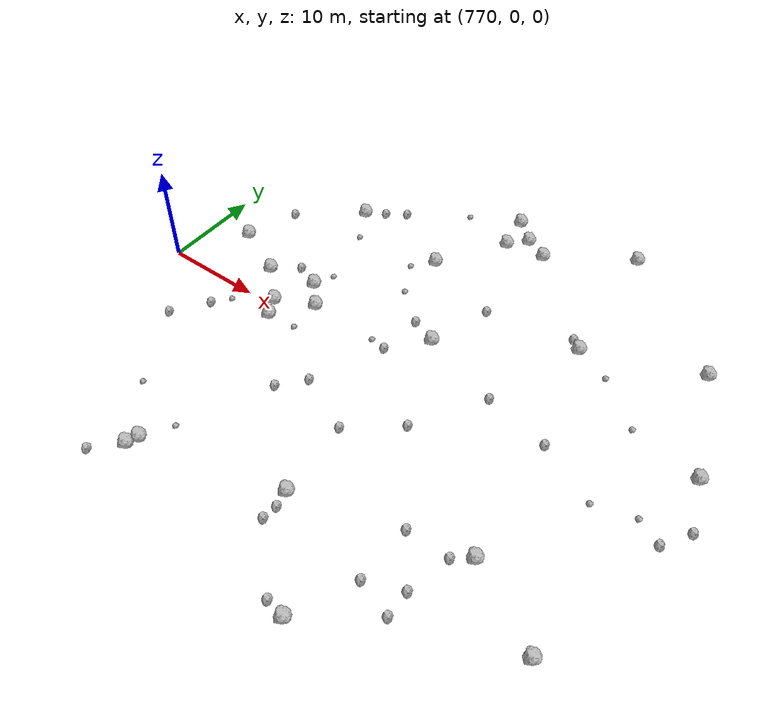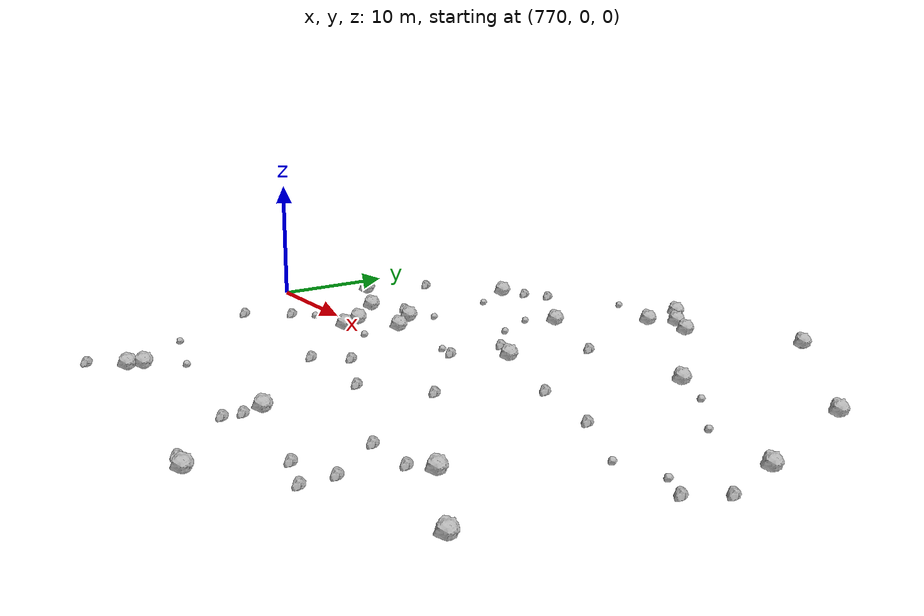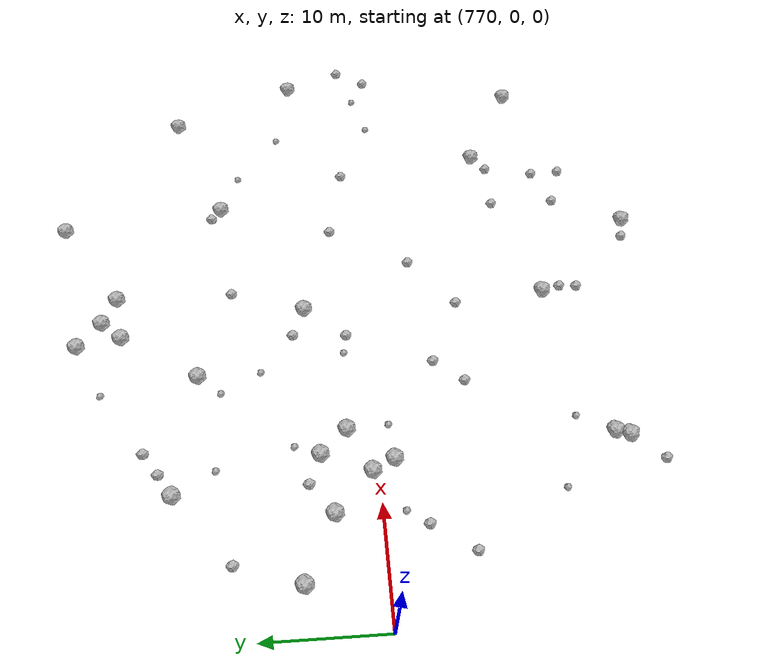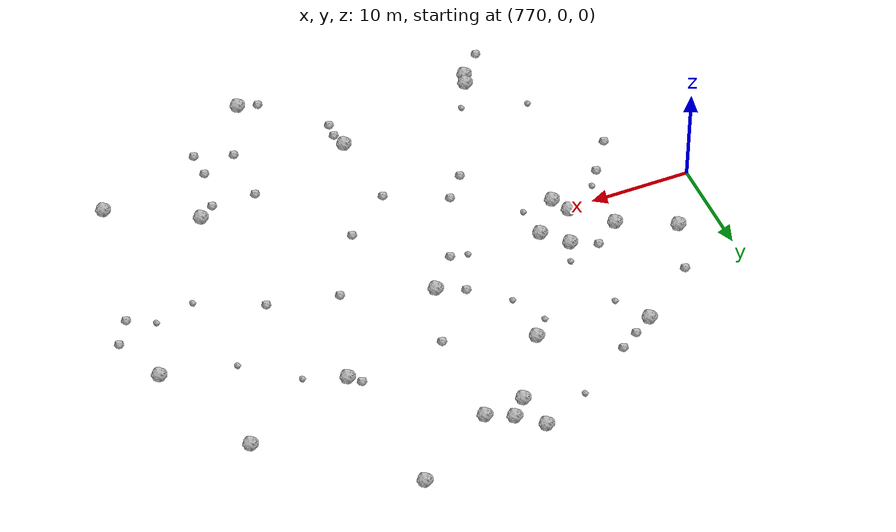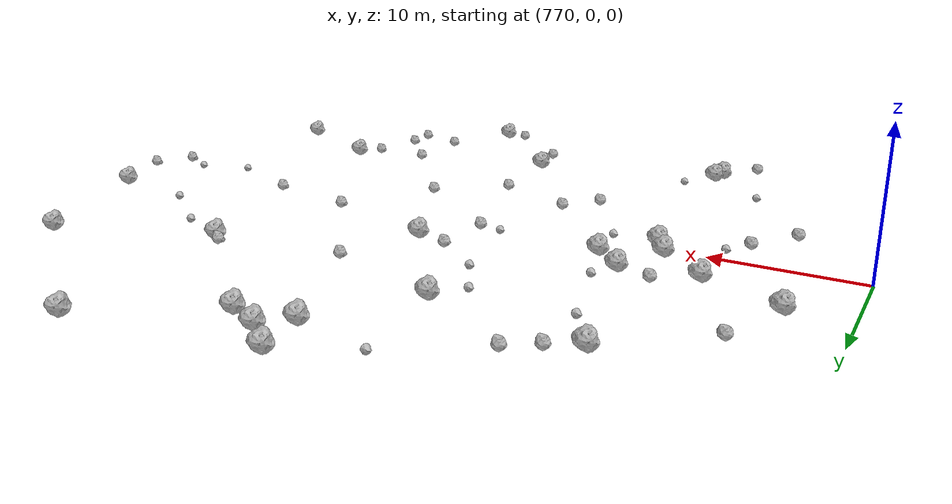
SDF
<sdf version="1.6">
 <world name="default">
  <include><uri>model://sun</uri></include>
  <model name="rock1_20_4">
   <include><uri>model://rock1</uri><pose>798.4183178821324 5.377105565684673 0.5 0 0 0</pose></include>
  </model>
  <model name="rock1_20_5">
   <include><uri>model://rock1</uri><pose>798.9948882882742 -15.983515003247605 0.5 0 0 0</pose></include>
  </model>
  <model name="rock1_20_6">
   <include><uri>model://rock1</uri><pose>821.4193278555214 17.012187681708795 0.5 0 0 0</pose></include>
  </model>
  <model name="rock1_20_7">
   <include><uri>model://rock1</uri><pose>792.1944137547434 14.593755433222555 0.5 0 0 0</pose></include>
  </model>
  <model name="rock1_20_8">
   <include><uri>model://rock1</uri><pose>784.3868200013974 4.650207628766054 0.5 0 0 0</pose></include>
  </model>
  <model name="rock1_20_9">
   <include><uri>model://rock1</uri><pose>815.2608183840109 -11.86935820526331 0.5 0 0 0</pose></include>
  </model>
  <model name="rock1_20_10">
   <include><uri>model://rock1</uri><pose>823.439637082299 -16.362569810026947 0.5 0 0 0</pose></include>
  </model>
  <model name="rock1_20_11">
   <include><uri>model://rock1</uri><pose>783.6471349045264 -1.251412240809696 0.5 0 0 0</pose></include>
  </model>
  <model name="rock1_20_12">
   <include><uri>model://rock1</uri><pose>800.5400550554648 21.88036370600927 0.5 0 0 0</pose></include>
  </model>
  <model name="rock1_20_13">
   <include><uri>model://rock1</uri><pose>796.4802184673227 21.298453936161344 0.5 0 0 0</pose></include>
  </model>
  <model name="rock1_20_14">
   <include><uri>model://rock1</uri><pose>782.7129830431777 0.5711792686135766 0.5 0 0 0</pose></include>
  </model>
  <model name="rock1_20_15">
   <include><uri>model://rock1</uri><pose>773.9574563066145 6.371602313677855 0.5 0 0 0</pose></include>
  </model>
  <model name="rock1_20_16">
   <include><uri>model://rock1</uri><pose>779.3519494166658 3.783440977759575 0.5 0 0 0</pose></include>
  </model>
  <model name="rock1_20_17">
   <include><uri>model://rock1</uri><pose>784.4742864801066 -20.545910510411396 0.5 0 0 0</pose></include>
  </model>
  <model name="rock1_20_18">
   <include><uri>model://rock1</uri><pose>798.0929437130162 23.058466534432725 0.5 0 0 0</pose></include>
  </model>
  <model name="rock1_20_19">
   <include><uri>model://rock1</uri><pose>826.0240636978396 5.825455863024729 0.5 0 0 0</pose></include>
  </model>
  <model name="rock1_20_20">
   <include><uri>model://rock1</uri><pose>781.6090065608718 16.445625539632935 0.5 0 0 0</pose></include>
  </model>
  <model name="rock1_20_21">
   <include><uri>model://rock1</uri><pose>810.2346152950066 12.704145106154037 0.5 0 0 0</pose></include>
  </model>
  <model name="rock1_20_22">
   <include><uri>model://rock1</uri><pose>786.4862094189747 2.399848912256246 0.5 0 0 0</pose></include>
  </model>
  <model name="rock1_20_23">
   <include><uri>model://rock1</uri><pose>784.8630582104462 -19.40008767671044 0.5 0 0 0</pose></include>
  </model>
  <model name="rock1_20_24">
   <include><uri>model://rock1</uri><pose>806.5296635194711 -24.896309543769817 0.5 0 0 0</pose></include>
  </model>
  <model name="rock1_20_25">
   <include><uri>model://rock1</uri><pose>795.8192855152488 25.05844011386175 0.5 0 0 0</pose></include>
  </model>
  <model name="rock1_20_26">
   <include><uri>model://rock1</uri><pose>808.6290723975977 27.127368801500992 0.5 0 0 0</pose></include>
  </model>
  <model name="rock2_20_0">
   <include><uri>model://rock2</uri><pose>812.8586002624244 -20.08842172133572 0.3 0 0 0</pose></include>
  </model>
  <model name="rock2_20_1">
   <include><uri>model://rock2</uri><pose>775.7257903601771 11.717280691429913 0.3 0 0 0</pose></include>
  </model>
  <model name="rock2_20_2">
   <include><uri>model://rock2</uri><pose>785.3443662750748 18.886647971934586 0.3 0 0 0</pose></include>
  </model>
  <model name="rock2_20_3">
   <include><uri>model://rock2</uri><pose>783.4629783269831 17.613748064746602 0.3 0 0 0</pose></include>
  </model>
  <model name="rock2_20_4">
   <include><uri>model://rock2</uri><pose>799.2442127847642 -19.142394479981725 0.3 0 0 0</pose></include>
  </model>
  <model name="rock2_20_5">
   <include><uri>model://rock2</uri><pose>775.671171758037 -6.841632262340642 0.3 0 0 0</pose></include>
  </model>
  <model name="rock2_20_6">
   <include><uri>model://rock2</uri><pose>782.1783321809036 -22.99543691185418 0.3 0 0 0</pose></include>
  </model>
  <model name="rock2_20_7">
   <include><uri>model://rock2</uri><pose>813.6399258503822 -13.083257978158048 0.3 0 0 0</pose></include>
  </model>
  <model name="rock2_20_8">
   <include><uri>model://rock2</uri><pose>806.8840308735379 2.598780415698954 0.3 0 0 0</pose></include>
  </model>
  <model name="rock2_20_9">
   <include><uri>model://rock2</uri><pose>828.0288964777835 0.6386977121036068 0.3 0 0 0</pose></include>
  </model>
  <model name="rock2_20_10">
   <include><uri>model://rock2</uri><pose>778.0131370883265 -3.4434973452374003 0.3 0 0 0</pose></include>
  </model>
  <model name="rock2_20_11">
   <include><uri>model://rock2</uri><pose>813.6615811406766 1.1089355809714334 0.3 0 0 0</pose></include>
  </model>
  <model name="rock2_20_12">
   <include><uri>model://rock2</uri><pose>826.3815955405946 -2.0039414245072216 0.3 0 0 0</pose></include>
  </model>
  <model name="rock2_20_13">
   <include><uri>model://rock2</uri><pose>795.4319469832702 1.8463891603787204 0.3 0 0 0</pose></include>
  </model>
  <model name="rock2_20_14">
   <include><uri>model://rock2</uri><pose>802.8673087487423 -4.300627726996002 0.3 0 0 0</pose></include>
  </model>
  <model name="rock2_20_15">
   <include><uri>model://rock2</uri><pose>795.7426276143578 6.454831552638211 0.3 0 0 0</pose></include>
  </model>
  <model name="rock2_20_16">
   <include><uri>model://rock2</uri><pose>804.5566530590733 -24.484316609226138 0.3 0 0 0</pose></include>
  </model>
  <model name="rock2_20_17">
   <include><uri>model://rock2</uri><pose>800.4384247044451 11.729687695951846 0.3 0 0 0</pose></include>
  </model>
  <model name="rock2_20_18">
   <include><uri>model://rock2</uri><pose>809.2233222554938 -18.838660158308826 0.3 0 0 0</pose></include>
  </model>
  <model name="rock2_20_19">
   <include><uri>model://rock2</uri><pose>809.2818778524152 -13.019962850003239 0.3 0 0 0</pose></include>
  </model>
  <model name="rock2_20_20">
   <include><uri>model://rock2</uri><pose>792.374388999807 -5.382085071177162 0.3 0 0 0</pose></include>
  </model>
  <model name="rock2_20_21">
   <include><uri>model://rock2</uri><pose>799.363524917359 -17.628625115996723 0.3 0 0 0</pose></include>
  </model>
  <model name="rock2_20_22">
   <include><uri>model://rock2</uri><pose>809.1491999036164 13.573037183128008 0.3 0 0 0</pose></include>
  </model>
  <model name="rock2_20_23">
   <include><uri>model://rock2</uri><pose>812.7541345152986 -17.467583893098478 0.3 0 0 0</pose></include>
  </model>
  <model name="rock2_20_24">
   <include><uri>model://rock2</uri><pose>790.3246755104307 -7.820057109519084 0.3 0 0 0</pose></include>
  </model>
  <model name="rock2_20_25">
   <include><uri>model://rock2</uri><pose>798.1836541565472 -8.093255036582548 0.3 0 0 0</pose></include>
  </model>
  <model name="rock2_20_26">
   <include><uri>model://rock2</uri><pose>781.867356255679 5.67415671063722 0.3 0 0 0</pose></include>
  </model>
  <model name="rock3_20_0">
   <include><uri>model://rock3</uri><pose>819.8305183572606 -1.8473243513874635 0.2 0 0 0</pose></include>
  </model>
  <model name="rock3_20_1">
   <include><uri>model://rock3</uri><pose>790.8872974106894 22.67433743098666 0.2 0 0 0</pose></include>
  </model>
  <model name="rock3_20_2">
   <include><uri>model://rock3</uri><pose>780.2434575227416 -14.650628304517792 0.2 0 0 0</pose></include>
  </model>
  <model name="rock3_20_3">
   <include><uri>model://rock3</uri><pose>786.6469236849239 -1.0534519941829004 0.2 0 0 0</pose></include>
  </model>
  <model name="rock3_20_4">
   <include><uri>model://rock3</uri><pose>790.4506595911096 12.62554181547199 0.2 0 0 0</pose></include>
  </model>
  <model name="rock3_20_5">
   <include><uri>model://rock3</uri><pose>786.4087302883369 -16.552929622617114 0.2 0 0 0</pose></include>
  </model>
  <model name="rock3_20_6">
   <include><uri>model://rock3</uri><pose>783.4830184510454 13.010845230450961 0.2 0 0 0</pose></include>
  </model>
  <model name="rock3_20_7">
   <include><uri>model://rock3</uri><pose>818.8607209967129 7.217499022172426 0.2 0 0 0</pose></include>
  </model>
  <model name="rock3_20_8">
   <include><uri>model://rock3</uri><pose>779.1795787085293 -1.786642730712181 0.2 0 0 0</pose></include>
  </model>
  <model name="rock3_20_9">
   <include><uri>model://rock3</uri><pose>808.7366846397044 26.993768078016984 0.2 0 0 0</pose></include>
  </model>
  <model name="rock3_20_10">
   <include><uri>model://rock3</uri><pose>793.7059788637231 2.1241820863623815 0.2 0 0 0</pose></include>
  </model>
  <model name="rock3_20_11">
   <include><uri>model://rock3</uri><pose>785.1748085046084 6.6885410858188195 0.2 0 0 0</pose></include>
  </model>
  <model name="rock3_20_12">
   <include><uri>model://rock3</uri><pose>792.2373131918038 9.261265350095385 0.2 0 0 0</pose></include>
  </model>
  <model name="rock3_20_13">
   <include><uri>model://rock3</uri><pose>813.9912014213144 11.068970965787067 0.2 0 0 0</pose></include>
  </model>
  <model name="rock3_20_14">
   <include><uri>model://rock3</uri><pose>823.8080030129126 -0.745207632615319 0.2 0 0 0</pose></include>
  </model>
 </world>
</sdf>
